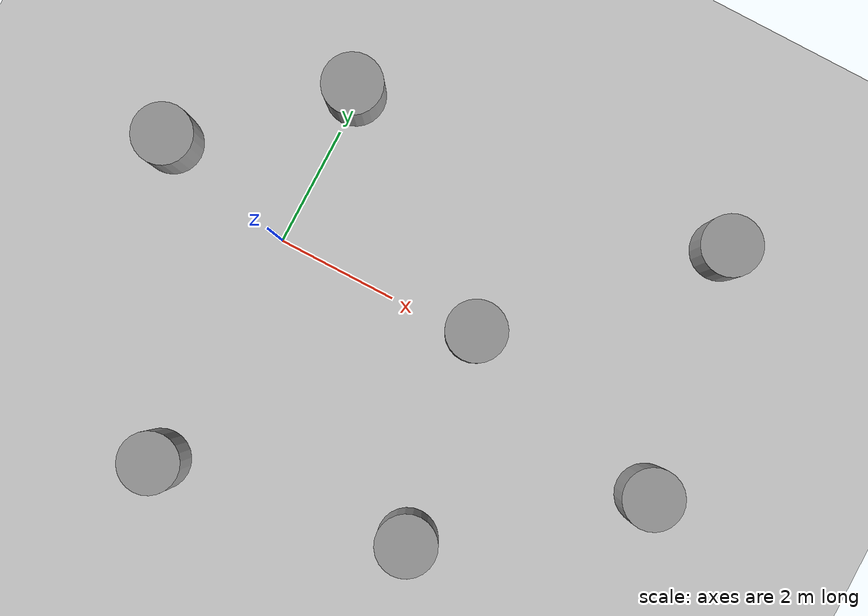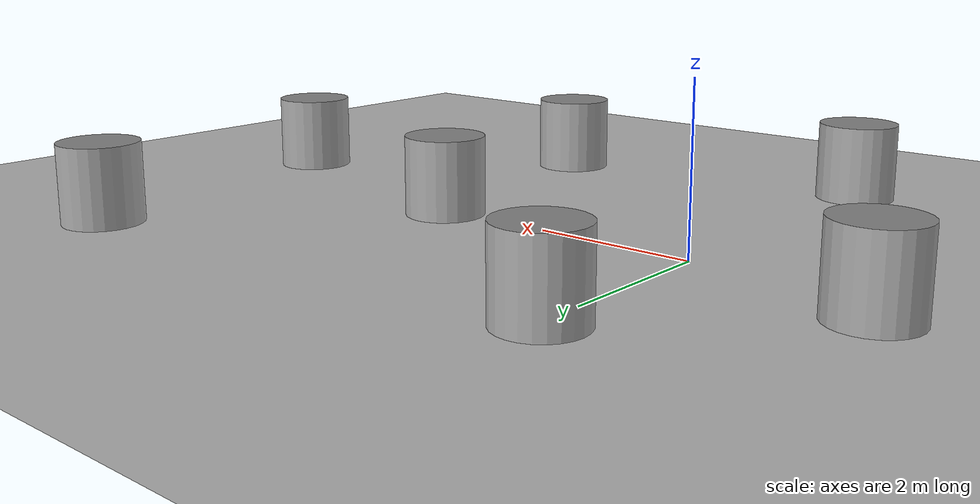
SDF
<sdf version="1.6">
 <world name="default">
  <light name="sun" type="directional">
   <pose>0 0 10 0 -0 0</pose>
   <diffuse>0.8 0.8 0.8 1</diffuse>
   <specular>0.1 0.1 0.1 1</specular>
   <attenuation>
    <range>1000</range>
    <constant>0.9</constant>
    <linear>0.01</linear>
    <quadratic>0.001</quadratic>
   </attenuation>
   <direction>-0.5 0.5 -1</direction>
  </light>
  <model name="ground_plane">
   <static>1</static>
   <link name="link">
    <collision name="collision">
     <geometry><plane><normal>0 0 1</normal><size>100 100</size></plane></geometry>
     <surface><friction><ode><mu>100</mu><mu2>50</mu2></ode></friction></surface>
    </collision>
    <visual name="visual">
     <cast_shadows>0</cast_shadows>
     <geometry><plane><normal>0 0 1</normal><size>100 100</size></plane></geometry>
     <material>
      <script><uri>file://media/materials/scripts/gazebo.material</uri><name>Gazebo/Grey</name></script>
     </material>
    </visual>
   </link>
  </model>
  <gravity>0 0 -9.8</gravity>
  <magnetic_field>6e-06 2.3e-05 -4.2e-05</magnetic_field>
  <atmosphere type="adiabatic"/>
  <physics name="default_physics" default="0" type="ode">
   <max_step_size>0.001</max_step_size>
   <real_time_factor>1</real_time_factor>
   <real_time_update_rate>1000</real_time_update_rate>
  </physics>
  <scene><ambient>0.4 0.4 0.4 1</ambient><background>0.7 0.7 0.7 1</background><shadows>1</shadows></scene>
  <spherical_coordinates>
   <surface_model>EARTH_WGS84</surface_model>
   <latitude_deg>0</latitude_deg>
   <longitude_deg>0</longitude_deg>
   <elevation>0</elevation>
   <heading_deg>0</heading_deg>
  </spherical_coordinates>
  <model name="unit_cylinder_0">
   <pose>-0.055154 2.64458 0.499992 -3e-06 4e-06 0</pose>
   <link name="link">
    <inertial>
     <mass>1</mass>
     <inertia><ixx>0.145833</ixx><ixy>0</ixy><ixz>0</ixz><iyy>0.145833</iyy><iyz>0</iyz><izz>0.125</izz></inertia>
    </inertial>
    <collision name="collision">
     <geometry><cylinder><radius>0.5</radius><length>1</length></cylinder></geometry>
    </collision>
    <visual name="visual">
     <geometry><cylinder><radius>0.5</radius><length>1</length></cylinder></geometry>
     <material>
      <script><name>Gazebo/Grey</name><uri>file://media/materials/scripts/gazebo.material</uri></script>
     </material>
    </visual>
   </link>
  </model>
  <model name="unit_cylinder_1">
   <pose>-2.31142 0.572057 0.499992 -3e-06 4e-06 0</pose>
   <link name="link">
    <inertial>
     <mass>1</mass>
     <inertia><ixx>0.145833</ixx><ixy>0</ixy><ixz>0</ixz><iyy>0.145833</iyy><iyz>0</iyz><izz>0.125</izz></inertia>
    </inertial>
    <collision name="collision">
     <geometry><cylinder><radius>0.5</radius><length>1</length></cylinder></geometry>
    </collision>
    <visual name="visual">
     <geometry><cylinder><radius>0.5</radius><length>1</length></cylinder></geometry>
     <material>
      <script><name>Gazebo/Grey</name><uri>file://media/materials/scripts/gazebo.material</uri></script>
     </material>
    </visual>
   </link>
  </model>
  <model name="unit_cylinder_2">
   <pose>3.45316 0.135721 0.499992 -3e-06 -4e-06 -0</pose>
   <link name="link">
    <inertial>
     <mass>1</mass>
     <inertia><ixx>0.145833</ixx><ixy>0</ixy><ixz>0</ixz><iyy>0.145833</iyy><iyz>0</iyz><izz>0.125</izz></inertia>
    </inertial>
    <collision name="collision">
     <geometry><cylinder><radius>0.5</radius><length>1</length></cylinder></geometry>
    </collision>
    <visual name="visual">
     <geometry><cylinder><radius>0.5</radius><length>1</length></cylinder></geometry>
     <material>
      <script><name>Gazebo/Grey</name><uri>file://media/materials/scripts/gazebo.material</uri></script>
     </material>
    </visual>
   </link>
  </model>
  <model name="unit_cylinder_3">
   <pose>4.03113 -3.30277 0.499993 -3e-06 -3e-06 0</pose>
   <link name="link">
    <inertial>
     <mass>1</mass>
     <inertia><ixx>0.145833</ixx><ixy>0</ixy><ixz>0</ixz><iyy>0.145833</iyy><iyz>0</iyz><izz>0.125</izz></inertia>
    </inertial>
    <collision name="collision">
     <geometry><cylinder><radius>0.5</radius><length>1</length></cylinder></geometry>
    </collision>
    <visual name="visual">
     <geometry><cylinder><radius>0.5</radius><length>1</length></cylinder></geometry>
     <material>
      <script><name>Gazebo/Grey</name><uri>file://media/materials/scripts/gazebo.material</uri></script>
     </material>
    </visual>
   </link>
  </model>
  <model name="unit_cylinder_4">
   <pose>-0.083737 -4.03015 0.499997 3e-06 4e-06 -0</pose>
   <link name="link">
    <inertial>
     <mass>1</mass>
     <inertia><ixx>0.145833</ixx><ixy>0</ixy><ixz>0</ixz><iyy>0.145833</iyy><iyz>0</iyz><izz>0.125</izz></inertia>
    </inertial>
    <collision name="collision">
     <geometry><cylinder><radius>0.5</radius><length>1</length></cylinder></geometry>
    </collision>
    <visual name="visual">
     <geometry><cylinder><radius>0.5</radius><length>1</length></cylinder></geometry>
     <material>
      <script><name>Gazebo/Grey</name><uri>file://media/materials/scripts/gazebo.material</uri></script>
     </material>
    </visual>
   </link>
  </model>
  <model name="unit_cylinder_5">
   <pose>7.07888 -0.890751 0.499997 3e-06 4e-06 -0</pose>
   <link name="link">
    <inertial>
     <mass>1</mass>
     <inertia><ixx>0.145833</ixx><ixy>0</ixy><ixz>0</ixz><iyy>0.145833</iyy><iyz>0</iyz><izz>0.125</izz></inertia>
    </inertial>
    <collision name="collision">
     <geometry><cylinder><radius>0.5</radius><length>1</length></cylinder></geometry>
    </collision>
    <visual name="visual">
     <geometry><cylinder><radius>0.5</radius><length>1</length></cylinder></geometry>
     <material>
      <script><name>Gazebo/Grey</name><uri>file://media/materials/scripts/gazebo.material</uri></script>
     </material>
    </visual>
   </link>
  </model>
  <model name="unit_cylinder_6">
   <pose>6.34331 3.15803 0.499997 3e-06 4e-06 -0</pose>
   <link name="link">
    <inertial>
     <mass>1</mass>
     <inertia><ixx>0.145833</ixx><ixy>0</ixy><ixz>0</ixz><iyy>0.145833</iyy><iyz>0</iyz><izz>0.125</izz></inertia>
    </inertial>
    <collision name="collision">
     <geometry><cylinder><radius>0.5</radius><length>1</length></cylinder></geometry>
    </collision>
    <visual name="visual">
     <geometry><cylinder><radius>0.5</radius><length>1</length></cylinder></geometry>
     <material>
      <script><name>Gazebo/Grey</name><uri>file://media/materials/scripts/gazebo.material</uri></script>
     </material>
    </visual>
   </link>
  </model>
 </world>
</sdf>
